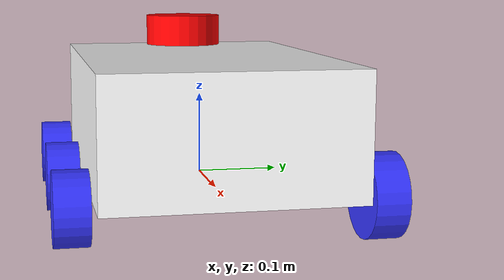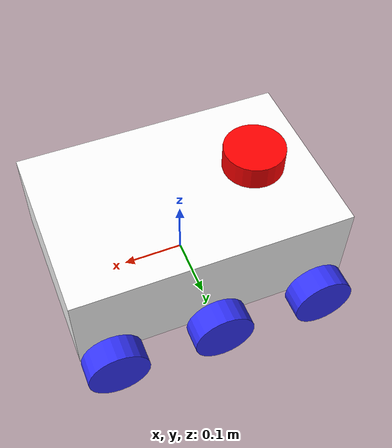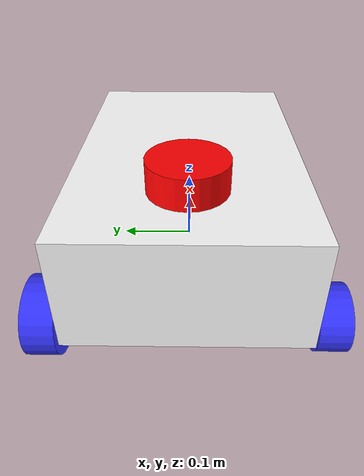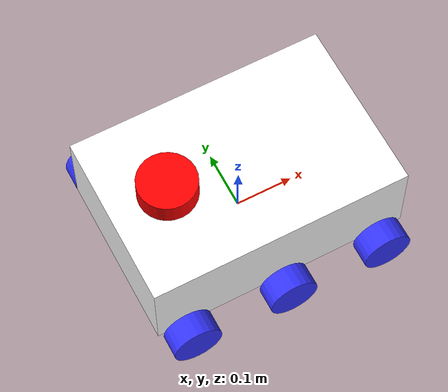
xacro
<?xml version="1.0"?>
<robot xmlns:xacro="http://www.ros.org/wiki/xacro"  name="robot">

    <xacro:arg name="use_ros2_control" default="true"/>

    <xacro:include filename="robot_core.xacro" />

    <xacro:if value="$(arg use_ros2_control)">
        <xacro:include filename="ros2_control.xacro" />
    </xacro:if>

    <xacro:include filename="lidar.xacro" />

</robot>

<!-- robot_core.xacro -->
<robot xmlns:xacro="http://www.ros.org/wiki/xacro">
    <xacro:include filename="inertial_macros.xacro"/>
    <material name="white">
        <color rgba="1 1 1 1"/>
    </material>
    <material name="orange">
        <color rgba="1 0.3 0.1 1"/>
    </material>
    <material name="blue">
        <color rgba="0.2 0.2 1 1"/>
    </material>
    <material name="black">
        <color rgba="0 0 0 1"/>
    </material>
    <material name="red">
        <color rgba="1 0 0 1"/>
    </material>

    <link name="base_link">

     <!-- BASE_FOOTPRINT LINK -->

    <joint name="base_footprint_joint" type="fixed">
        <parent link="base_link"/>
        <child link="base_footprint"/>
        <origin xyz="0 0 0" rpy="0 0 0"/>
    </joint>

    <link name="base_footprint">
    </link>

    </link>
    <joint name="chassis_joint" type="fixed">
        <parent link="base_link"/>
        <child link="chassis"/>
        <origin xyz="-0.225 0 0"/>
    </joint>
    <link name="chassis">
        <visual>
            <origin xyz="0.225 0.0 0.075"/>
            <geometry>
                <box size="0.45 0.3 0.15"/>
            </geometry>
            <material name="white"/>

        </visual>
        <collision>
            <origin xyz="0.225 0.0 0.075"/>
            <geometry>
                <box size="0.45 0.3 0.15"/>
            </geometry>

        </collision>
        <xacro:inertial_box mass="0.5" x="0.45" y="0.3" z="0.15">
            <origin xyz="0.225 0.0 0.075" rpy="0 0 0"/>
        </xacro:inertial_box>
    </link>

    <gazebo reference="chassis">
        <material>Gazebo/White</material>
    </gazebo>

    <joint name="front_left_wheel_joint" type="continuous">
        <parent link="base_link"/>
        <child link="front_left_wheel"/>
        <origin xyz="0.175 0.175 0" rpy="-${pi/2} 0.0 0.0"/>
        <axis xyz="0 0 1"/>

    </joint>
    <link name="front_left_wheel">
        <visual>
            <geometry>
                <cylinder radius="0.05" length="0.04"/>
            </geometry>
            <material name="blue"/>
        </visual>
        <collision>
            <geometry>
                <cylinder radius="0.0425" length="0.04"/>
            </geometry>
        </collision>
        <xacro:inertial_cylinder mass="0.1" length="0.04" radius="0.0425">
            <origin xyz="0 0 0" rpy="0 0 0"/>
        </xacro:inertial_cylinder>
    </link>

    <joint name="back_left_wheel_joint" type="continuous">
        <parent link="base_link"/>
        <child link="back_left_wheel"/>
        <origin xyz="-0.175 0.175 0" rpy="-${pi/2} 0.0 0.0"/>
        <axis xyz="0 0 1"/>

    </joint>
    <link name="back_left_wheel">
        <visual>
            <geometry>
                <cylinder radius="0.05" length="0.04"/>
            </geometry>
            <material name="blue"/>
        </visual>
        <collision>
            <geometry>
                <cylinder radius="0.0425" length="0.04"/>
            </geometry>
        </collision>
        <xacro:inertial_cylinder mass="0.1" length="0.04" radius="0.0425">
            <origin xyz="0 0 0" rpy="0 0 0"/>
        </xacro:inertial_cylinder>
    </link>

    <joint name="left_wheel_joint" type="continuous">
        <parent link="base_link"/>
        <child link="left_wheel"/>
        <origin xyz="0 0.175 0" rpy="-${pi/2} 0.0 0.0"/>
        <axis xyz="0 0 1"/>

    </joint>
    <link name="left_wheel">
        <visual>
            <geometry>
                <cylinder radius="0.05" length="0.04"/>
            </geometry>
            <material name="blue"/>
        </visual>
        <collision>
            <geometry>
                <cylinder radius="0.0425" length="0.04"/>
            </geometry>
        </collision>
        <xacro:inertial_cylinder mass="0.1" length="0.04" radius="0.0425">
            <origin xyz="0 0 0" rpy="0 0 0"/>
        </xacro:inertial_cylinder>
    </link>

    <joint name="front_right_wheel_joint" type="continuous">
        <parent link="base_link"/>
        <child link="front_right_wheel"/>
        <origin xyz="0.175 -0.175 0" rpy="${pi/2} 0.0 0.0"/>
        <axis xyz="0 0 -1"/>

    </joint>
    <link name="front_right_wheel">
        <visual>
            <geometry>
                <cylinder radius="0.0425" length="0.04"/>
            </geometry>
            <material name="blue"/>
        </visual>
        <collision>
            <geometry>
                <cylinder radius="0.0425" length="0.04"/>
            </geometry>
        </collision>
        <xacro:inertial_cylinder mass="0.1" length="0.04" radius="0.0425">
            <origin xyz="0 0 0" rpy="0 0 0"/>
        </xacro:inertial_cylinder>
    </link>

    <joint name="right_wheel_joint" type="continuous">
        <parent link="base_link"/>
        <child link="right_wheel"/>
        <origin xyz="0 -0.175 0" rpy="${pi/2} 0.0 0.0"/>
        <axis xyz="0 0 -1"/>

    </joint>
    <link name="right_wheel">
        <visual>
            <geometry>
                <cylinder radius="0.0425" length="0.04"/>
            </geometry>
            <material name="blue"/>
        </visual>
        <collision>
            <geometry>
                <cylinder radius="0.0425" length="0.04"/>
            </geometry>
        </collision>
        <xacro:inertial_cylinder mass="0.1" length="0.04" radius="0.0425">
            <origin xyz="0 0 0" rpy="0 0 0"/>
        </xacro:inertial_cylinder>
    </link>

    <joint name="back_right_wheel_joint" type="continuous">
        <parent link="base_link"/>
        <child link="back_right_wheel"/>
        <origin xyz="-0.175 -0.175 0" rpy="${pi/2} 0.0 0.0"/>
        <axis xyz="0 0 -1"/>

    </joint>
    <link name="back_right_wheel">
        <visual>
            <geometry>
                <cylinder radius="0.0425" length="0.04"/>
            </geometry>
            <material name="blue"/>
        </visual>
        <collision>
            <geometry>
                <cylinder radius="0.0425" length="0.04"/>
            </geometry>
        </collision>
        <xacro:inertial_cylinder mass="0.1" length="0.04" radius="0.0425">
            <origin xyz="0 0 0" rpy="0 0 0"/>
        </xacro:inertial_cylinder>
    </link>

    <gazebo reference="front_left_wheel">
        <material>Gazebo/Blue</material>
    </gazebo>

    <gazebo reference="back_left_wheel">
        <material>Gazebo/Blue</material>
    </gazebo>

    <gazebo reference="left_wheel">
        <material>Gazebo/Blue</material>
    </gazebo>

    <gazebo reference="front_right_wheel">
        <material>Gazebo/Blue</material>
    </gazebo>

    <gazebo reference="right_wheel">
        <material>Gazebo/Blue</material>
    </gazebo>

    <gazebo reference="back_right_wheel">
        <material>Gazebo/Blue</material>
    </gazebo>

</robot>

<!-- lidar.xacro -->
<robot xmlns:xacro="http://www.ros.org/wiki/xacro" >

    <joint name="laser_joint" type="fixed">
        <parent link="chassis"/>
        <child link="laser_frame"/>
        <origin xyz="0.1 0 0.175" rpy="0 0 0"/>
    </joint>

    <link name="laser_frame">
        <visual>
            <geometry>
                <cylinder radius="0.05" length="0.04"/>
            </geometry>
            <material name="red"/>
        </visual>
        <collision>
            <geometry>
                <cylinder radius="0.05" length="0.04"/>
            </geometry>
        </collision>
        <xacro:inertial_cylinder mass="0.1" length="0.04" radius="0.05">
            <origin xyz="0 0 0" rpy="0 0 0"/>
        </xacro:inertial_cylinder>
    </link>

    <gazebo reference="laser_frame">
        <material>Gazebo/Red</material>

        <sensor name="laser" type="ray">
            <pose> 0 0 0 0 0 0 </pose>
            <visualize>true</visualize>
            <update_rate>10</update_rate>
            <ray>
                <scan>
                    <horizontal>
                        <samples>360</samples>
                        <min_angle>-3.14</min_angle>
                        <max_angle>3.14</max_angle>
                    </horizontal>
                </scan>
                <range>
                    <min>0.3</min>
                    <max>8</max>
                </range>
            </ray>
            <plugin name="laser_controller" filename="libgazebo_ros_ray_sensor.so">
                <ros>
                    <argument>~/out:=scan</argument>
                </ros>
                <output_type>sensor_msgs/LaserScan</output_type>
                <frame_name>laser_frame</frame_name>
            </plugin>
        </sensor>
    </gazebo>

</robot>
